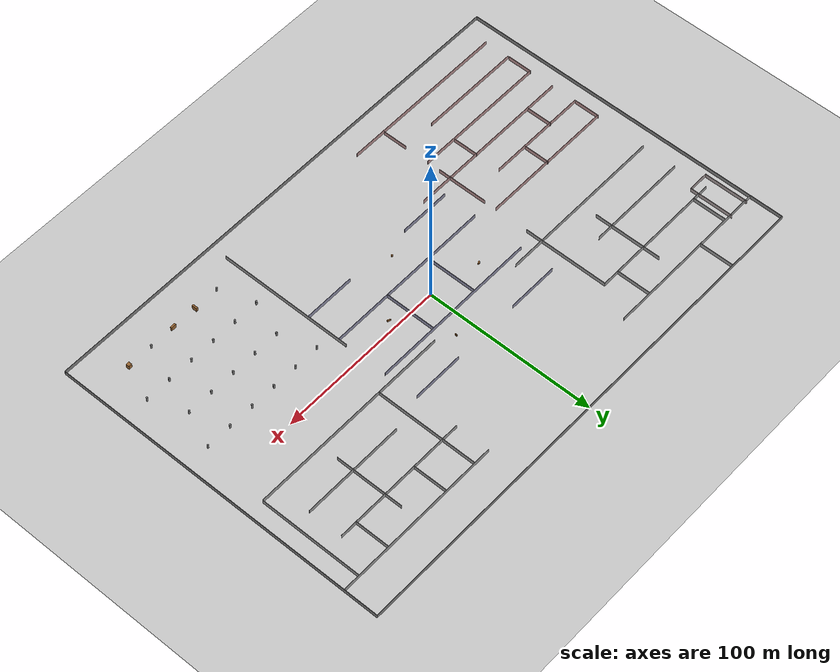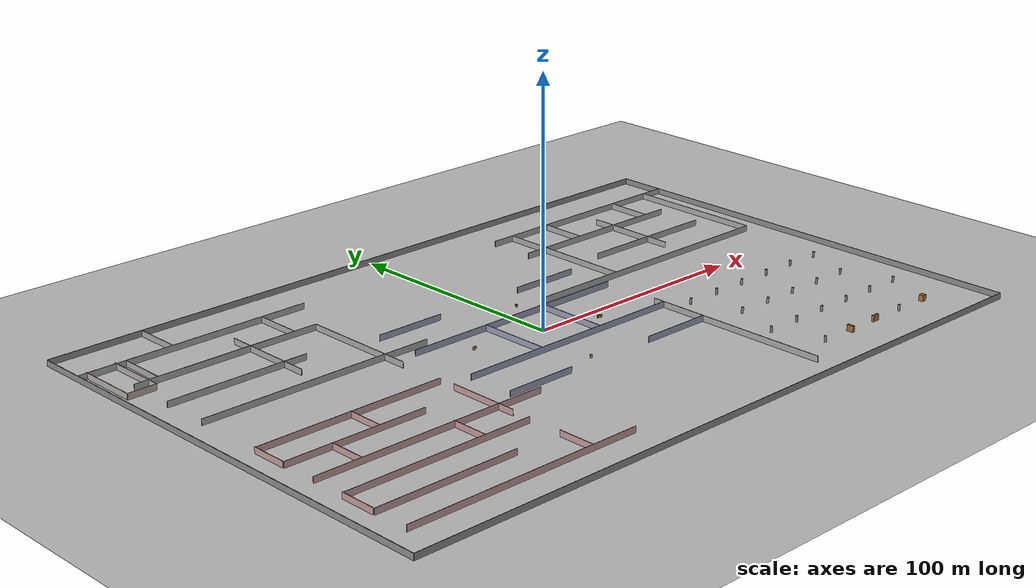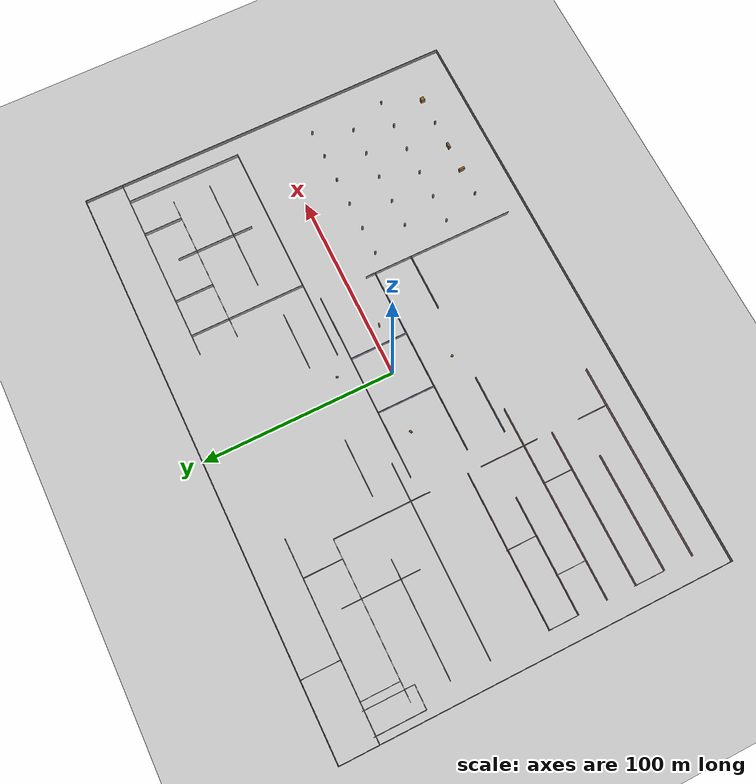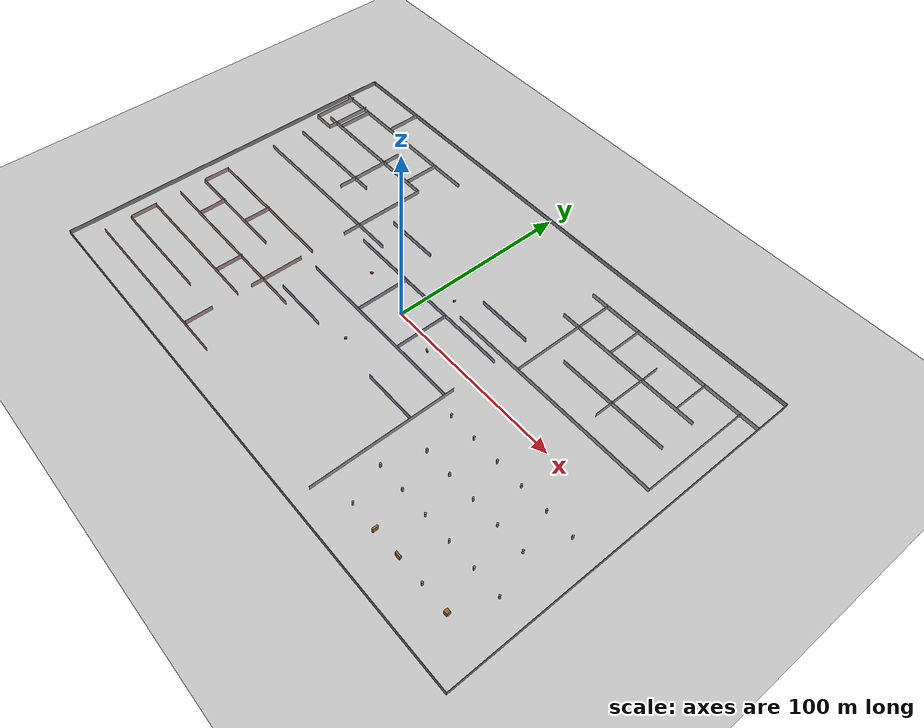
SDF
<?xml version="1.0"?>
<sdf version="1.6">
  <world name="factory_maze">

    <physics type="ode">
      <real_time_update_rate>1000.0</real_time_update_rate>
      <max_step_size>0.001</max_step_size>
      <real_time_factor>1</real_time_factor>
    </physics>

    <include>
      <uri>model://sun</uri>
    </include>

    <include>
      <uri>model://ground_plane</uri>
    </include>

    <!-- Wall height: 2.5m, thickness: 0.2m -->
    <!-- Robot: 0.6m x 0.6m, corridors: 1.5-2.0m wide -->

    <!-- OUTER WALLS (300m x 200m) -->

    <!-- North wall -->
    <model name="outer_north">
      <static>true</static>
      <pose>0 100 1.25 0 0 0</pose>
      <link name="link">
        <collision name="c"><geometry><box><size>300.2 0.2 2.5</size></box></geometry></collision>
        <visual name="v"><geometry><box><size>300.2 0.2 2.5</size></box></geometry>
          <material><ambient>0.5 0.5 0.5 1</ambient></material></visual>
      </link>
    </model>
    <!-- South wall -->
    <model name="outer_south">
      <static>true</static>
      <pose>0 -100 1.25 0 0 0</pose>
      <link name="link">
        <collision name="c"><geometry><box><size>300.2 0.2 2.5</size></box></geometry></collision>
        <visual name="v"><geometry><box><size>300.2 0.2 2.5</size></box></geometry>
          <material><ambient>0.5 0.5 0.5 1</ambient></material></visual>
      </link>
    </model>
    <!-- East wall -->
    <model name="outer_east">
      <static>true</static>
      <pose>150 0 1.25 0 0 0</pose>
      <link name="link">
        <collision name="c"><geometry><box><size>0.2 200.0 2.5</size></box></geometry></collision>
        <visual name="v"><geometry><box><size>0.2 200.0 2.5</size></box></geometry>
          <material><ambient>0.5 0.5 0.5 1</ambient></material></visual>
      </link>
    </model>
    <!-- West wall -->
    <model name="outer_west">
      <static>true</static>
      <pose>-150 0 1.25 0 0 0</pose>
      <link name="link">
        <collision name="c"><geometry><box><size>0.2 200.0 2.5</size></box></geometry></collision>
        <visual name="v"><geometry><box><size>0.2 200.0 2.5</size></box></geometry>
          <material><ambient>0.5 0.5 0.5 1</ambient></material></visual>
      </link>
    </model>

    <!-- ZONE A: Northwest — Dense maze corridors (-150 to -50, 0 to 100) -->

    <!-- Horizontal corridors (2m wide between walls) -->
    <model name="za_h1"><static>true</static>
      <pose>-100 80 1.25 0 0 0</pose>
      <link name="l"><collision name="c"><geometry><box><size>100 0.2 2.5</size></box></geometry></collision>
        <visual name="v"><geometry><box><size>100 0.2 2.5</size></box></geometry><material><ambient>0.6 0.6 0.6 1</ambient></material></visual></link>
    </model>
    <model name="za_h2"><static>true</static>
      <pose>-100 60 1.25 0 0 0</pose>
      <link name="l"><collision name="c"><geometry><box><size>80 0.2 2.5</size></box></geometry></collision>
        <visual name="v"><geometry><box><size>80 0.2 2.5</size></box></geometry><material><ambient>0.6 0.6 0.6 1</ambient></material></visual></link>
    </model>
    <model name="za_h3"><static>true</static>
      <pose>-110 40 1.25 0 0 0</pose>
      <link name="l"><collision name="c"><geometry><box><size>60 0.2 2.5</size></box></geometry></collision>
        <visual name="v"><geometry><box><size>60 0.2 2.5</size></box></geometry><material><ambient>0.6 0.6 0.6 1</ambient></material></visual></link>
    </model>
    <model name="za_h4"><static>true</static>
      <pose>-90 20 1.25 0 0 0</pose>
      <link name="l"><collision name="c"><geometry><box><size>100 0.2 2.5</size></box></geometry></collision>
        <visual name="v"><geometry><box><size>100 0.2 2.5</size></box></geometry><material><ambient>0.6 0.6 0.6 1</ambient></material></visual></link>
    </model>

    <!-- Vertical walls creating maze in zone A -->
    <model name="za_v1"><static>true</static>
      <pose>-130 70 1.25 0 0 0</pose>
      <link name="l"><collision name="c"><geometry><box><size>0.2 20 2.5</size></box></geometry></collision>
        <visual name="v"><geometry><box><size>0.2 20 2.5</size></box></geometry><material><ambient>0.6 0.6 0.6 1</ambient></material></visual></link>
    </model>
    <model name="za_v2"><static>true</static>
      <pose>-110 90 1.25 0 0 0</pose>
      <link name="l"><collision name="c"><geometry><box><size>0.2 20 2.5</size></box></geometry></collision>
        <visual name="v"><geometry><box><size>0.2 20 2.5</size></box></geometry><material><ambient>0.6 0.6 0.6 1</ambient></material></visual></link>
    </model>
    <model name="za_v3"><static>true</static>
      <pose>-90 50 1.25 0 0 0</pose>
      <link name="l"><collision name="c"><geometry><box><size>0.2 40 2.5</size></box></geometry></collision>
        <visual name="v"><geometry><box><size>0.2 40 2.5</size></box></geometry><material><ambient>0.6 0.6 0.6 1</ambient></material></visual></link>
    </model>
    <model name="za_v4"><static>true</static>
      <pose>-70 70 1.25 0 0 0</pose>
      <link name="l"><collision name="c"><geometry><box><size>0.2 20 2.5</size></box></geometry></collision>
        <visual name="v"><geometry><box><size>0.2 20 2.5</size></box></geometry><material><ambient>0.6 0.6 0.6 1</ambient></material></visual></link>
    </model>
    <model name="za_v5"><static>true</static>
      <pose>-60 35 1.25 0 0 0</pose>
      <link name="l"><collision name="c"><geometry><box><size>0.2 50 2.5</size></box></geometry></collision>
        <visual name="v"><geometry><box><size>0.2 50 2.5</size></box></geometry><material><ambient>0.6 0.6 0.6 1</ambient></material></visual></link>
    </model>

    <!-- Dead-end traps in zone A -->
    <model name="za_dead1"><static>true</static>
      <pose>-140 55 1.25 0 0 0</pose>
      <link name="l"><collision name="c"><geometry><box><size>12 0.2 2.5</size></box></geometry></collision>
        <visual name="v"><geometry><box><size>12 0.2 2.5</size></box></geometry><material><ambient>0.65 0.6 0.6 1</ambient></material></visual></link>
    </model>
    <model name="za_dead2"><static>true</static>
      <pose>-146 68 1.25 0 0 0</pose>
      <link name="l"><collision name="c"><geometry><box><size>0.2 26 2.5</size></box></geometry></collision>
        <visual name="v"><geometry><box><size>0.2 26 2.5</size></box></geometry><material><ambient>0.65 0.6 0.6 1</ambient></material></visual></link>
    </model>
    <model name="za_dead3"><static>true</static>
      <pose>-134 68 1.25 0 0 0</pose>
      <link name="l"><collision name="c"><geometry><box><size>0.2 26 2.5</size></box></geometry></collision>
        <visual name="v"><geometry><box><size>0.2 26 2.5</size></box></geometry><material><ambient>0.65 0.6 0.6 1</ambient></material></visual></link>
    </model>

    <!-- ZONE B: Northeast — Long corridors + rooms (50 to 150, 0 to 100) -->

    <!-- Long horizontal corridors -->
    <model name="zb_h1"><static>true</static>
      <pose>100 80 1.25 0 0 0</pose>
      <link name="l"><collision name="c"><geometry><box><size>100 0.2 2.5</size></box></geometry></collision>
        <visual name="v"><geometry><box><size>100 0.2 2.5</size></box></geometry><material><ambient>0.6 0.6 0.6 1</ambient></material></visual></link>
    </model>
    <model name="zb_h2"><static>true</static>
      <pose>90 60 1.25 0 0 0</pose>
      <link name="l"><collision name="c"><geometry><box><size>80 0.2 2.5</size></box></geometry></collision>
        <visual name="v"><geometry><box><size>80 0.2 2.5</size></box></geometry><material><ambient>0.6 0.6 0.6 1</ambient></material></visual></link>
    </model>
    <model name="zb_h3"><static>true</static>
      <pose>100 40 1.25 0 0 0</pose>
      <link name="l"><collision name="c"><geometry><box><size>60 0.2 2.5</size></box></geometry></collision>
        <visual name="v"><geometry><box><size>60 0.2 2.5</size></box></geometry><material><ambient>0.6 0.6 0.6 1</ambient></material></visual></link>
    </model>
    <model name="zb_h4"><static>true</static>
      <pose>80 20 1.25 0 0 0</pose>
      <link name="l"><collision name="c"><geometry><box><size>120 0.2 2.5</size></box></geometry></collision>
        <visual name="v"><geometry><box><size>120 0.2 2.5</size></box></geometry><material><ambient>0.6 0.6 0.6 1</ambient></material></visual></link>
    </model>

    <!-- Vertical walls for rooms -->
    <model name="zb_v1"><static>true</static>
      <pose>60 50 1.25 0 0 0</pose>
      <link name="l"><collision name="c"><geometry><box><size>0.2 60 2.5</size></box></geometry></collision>
        <visual name="v"><geometry><box><size>0.2 60 2.5</size></box></geometry><material><ambient>0.6 0.6 0.6 1</ambient></material></visual></link>
    </model>
    <model name="zb_v2"><static>true</static>
      <pose>80 70 1.25 0 0 0</pose>
      <link name="l"><collision name="c"><geometry><box><size>0.2 20 2.5</size></box></geometry></collision>
        <visual name="v"><geometry><box><size>0.2 20 2.5</size></box></geometry><material><ambient>0.6 0.6 0.6 1</ambient></material></visual></link>
    </model>
    <model name="zb_v3"><static>true</static>
      <pose>100 50 1.25 0 0 0</pose>
      <link name="l"><collision name="c"><geometry><box><size>0.2 40 2.5</size></box></geometry></collision>
        <visual name="v"><geometry><box><size>0.2 40 2.5</size></box></geometry><material><ambient>0.6 0.6 0.6 1</ambient></material></visual></link>
    </model>
    <model name="zb_v4"><static>true</static>
      <pose>120 70 1.25 0 0 0</pose>
      <link name="l"><collision name="c"><geometry><box><size>0.2 20 2.5</size></box></geometry></collision>
        <visual name="v"><geometry><box><size>0.2 20 2.5</size></box></geometry><material><ambient>0.6 0.6 0.6 1</ambient></material></visual></link>
    </model>
    <model name="zb_v5"><static>true</static>
      <pose>140 50 1.25 0 0 0</pose>
      <link name="l"><collision name="c"><geometry><box><size>0.2 60 2.5</size></box></geometry></collision>
        <visual name="v"><geometry><box><size>0.2 60 2.5</size></box></geometry><material><ambient>0.6 0.6 0.6 1</ambient></material></visual></link>
    </model>

    <!-- ZONE C: Southwest — Narrow passages (-150 to -50, -100 to 0) -->
    <!-- Corridors 1.2m wide (robot is 0.6m → only 0.3m clearance each side) -->

    <!-- Tight zigzag corridors -->
    <model name="zc_h1"><static>true</static>
      <pose>-100 -10 1.25 0 0 0</pose>
      <link name="l"><collision name="c"><geometry><box><size>80 0.2 2.5</size></box></geometry></collision>
        <visual name="v"><geometry><box><size>80 0.2 2.5</size></box></geometry><material><ambient>0.7 0.55 0.55 1</ambient></material></visual></link>
    </model>
    <model name="zc_h2"><static>true</static>
      <pose>-110 -25 1.25 0 0 0</pose>
      <link name="l"><collision name="c"><geometry><box><size>60 0.2 2.5</size></box></geometry></collision>
        <visual name="v"><geometry><box><size>60 0.2 2.5</size></box></geometry><material><ambient>0.7 0.55 0.55 1</ambient></material></visual></link>
    </model>
    <model name="zc_h3"><static>true</static>
      <pose>-90 -40 1.25 0 0 0</pose>
      <link name="l"><collision name="c"><geometry><box><size>100 0.2 2.5</size></box></geometry></collision>
        <visual name="v"><geometry><box><size>100 0.2 2.5</size></box></geometry><material><ambient>0.7 0.55 0.55 1</ambient></material></visual></link>
    </model>
    <model name="zc_h4"><static>true</static>
      <pose>-100 -55 1.25 0 0 0</pose>
      <link name="l"><collision name="c"><geometry><box><size>80 0.2 2.5</size></box></geometry></collision>
        <visual name="v"><geometry><box><size>80 0.2 2.5</size></box></geometry><material><ambient>0.7 0.55 0.55 1</ambient></material></visual></link>
    </model>
    <model name="zc_h5"><static>true</static>
      <pose>-110 -70 1.25 0 0 0</pose>
      <link name="l"><collision name="c"><geometry><box><size>60 0.2 2.5</size></box></geometry></collision>
        <visual name="v"><geometry><box><size>60 0.2 2.5</size></box></geometry><material><ambient>0.7 0.55 0.55 1</ambient></material></visual></link>
    </model>
    <model name="zc_h6"><static>true</static>
      <pose>-90 -85 1.25 0 0 0</pose>
      <link name="l"><collision name="c"><geometry><box><size>100 0.2 2.5</size></box></geometry></collision>
        <visual name="v"><geometry><box><size>100 0.2 2.5</size></box></geometry><material><ambient>0.7 0.55 0.55 1</ambient></material></visual></link>
    </model>

    <!-- Vertical zigzag connectors -->
    <model name="zc_v1"><static>true</static>
      <pose>-140 -17 1.25 0 0 0</pose>
      <link name="l"><collision name="c"><geometry><box><size>0.2 15 2.5</size></box></geometry></collision>
        <visual name="v"><geometry><box><size>0.2 15 2.5</size></box></geometry><material><ambient>0.7 0.55 0.55 1</ambient></material></visual></link>
    </model>
    <model name="zc_v2"><static>true</static>
      <pose>-120 -32 1.25 0 0 0</pose>
      <link name="l"><collision name="c"><geometry><box><size>0.2 15 2.5</size></box></geometry></collision>
        <visual name="v"><geometry><box><size>0.2 15 2.5</size></box></geometry><material><ambient>0.7 0.55 0.55 1</ambient></material></visual></link>
    </model>
    <model name="zc_v3"><static>true</static>
      <pose>-100 -17 1.25 0 0 0</pose>
      <link name="l"><collision name="c"><geometry><box><size>0.2 15 2.5</size></box></geometry></collision>
        <visual name="v"><geometry><box><size>0.2 15 2.5</size></box></geometry><material><ambient>0.7 0.55 0.55 1</ambient></material></visual></link>
    </model>
    <model name="zc_v4"><static>true</static>
      <pose>-80 -47 1.25 0 0 0</pose>
      <link name="l"><collision name="c"><geometry><box><size>0.2 15 2.5</size></box></geometry></collision>
        <visual name="v"><geometry><box><size>0.2 15 2.5</size></box></geometry><material><ambient>0.7 0.55 0.55 1</ambient></material></visual></link>
    </model>
    <model name="zc_v5"><static>true</static>
      <pose>-60 -32 1.25 0 0 0</pose>
      <link name="l"><collision name="c"><geometry><box><size>0.2 30 2.5</size></box></geometry></collision>
        <visual name="v"><geometry><box><size>0.2 30 2.5</size></box></geometry><material><ambient>0.7 0.55 0.55 1</ambient></material></visual></link>
    </model>
    <model name="zc_v6"><static>true</static>
      <pose>-140 -62 1.25 0 0 0</pose>
      <link name="l"><collision name="c"><geometry><box><size>0.2 15 2.5</size></box></geometry></collision>
        <visual name="v"><geometry><box><size>0.2 15 2.5</size></box></geometry><material><ambient>0.7 0.55 0.55 1</ambient></material></visual></link>
    </model>
    <model name="zc_v7"><static>true</static>
      <pose>-60 -77 1.25 0 0 0</pose>
      <link name="l"><collision name="c"><geometry><box><size>0.2 15 2.5</size></box></geometry></collision>
        <visual name="v"><geometry><box><size>0.2 15 2.5</size></box></geometry><material><ambient>0.7 0.55 0.55 1</ambient></material></visual></link>
    </model>

    <!-- ZONE D: Southeast — Open area with pillars (50 to 150, -100 to 0) -->

    <!-- Grid of pillars (forces path planning around many small obstacles) -->
    <model name="zd_p01"><static>true</static><pose>60 -20 1.25 0 0 0</pose>
      <link name="l"><collision name="c"><geometry><cylinder><radius>0.5</radius><length>2.5</length></cylinder></geometry></collision>
        <visual name="v"><geometry><cylinder><radius>0.5</radius><length>2.5</length></cylinder></geometry><material><ambient>0.5 0.5 0.5 1</ambient></material></visual></link></model>
    <model name="zd_p02"><static>true</static><pose>75 -20 1.25 0 0 0</pose>
      <link name="l"><collision name="c"><geometry><cylinder><radius>0.5</radius><length>2.5</length></cylinder></geometry></collision>
        <visual name="v"><geometry><cylinder><radius>0.5</radius><length>2.5</length></cylinder></geometry><material><ambient>0.5 0.5 0.5 1</ambient></material></visual></link></model>
    <model name="zd_p03"><static>true</static><pose>90 -20 1.25 0 0 0</pose>
      <link name="l"><collision name="c"><geometry><cylinder><radius>0.5</radius><length>2.5</length></cylinder></geometry></collision>
        <visual name="v"><geometry><cylinder><radius>0.5</radius><length>2.5</length></cylinder></geometry><material><ambient>0.5 0.5 0.5 1</ambient></material></visual></link></model>
    <model name="zd_p04"><static>true</static><pose>105 -20 1.25 0 0 0</pose>
      <link name="l"><collision name="c"><geometry><cylinder><radius>0.5</radius><length>2.5</length></cylinder></geometry></collision>
        <visual name="v"><geometry><cylinder><radius>0.5</radius><length>2.5</length></cylinder></geometry><material><ambient>0.5 0.5 0.5 1</ambient></material></visual></link></model>
    <model name="zd_p05"><static>true</static><pose>120 -20 1.25 0 0 0</pose>
      <link name="l"><collision name="c"><geometry><cylinder><radius>0.5</radius><length>2.5</length></cylinder></geometry></collision>
        <visual name="v"><geometry><cylinder><radius>0.5</radius><length>2.5</length></cylinder></geometry><material><ambient>0.5 0.5 0.5 1</ambient></material></visual></link></model>
    <model name="zd_p06"><static>true</static><pose>135 -20 1.25 0 0 0</pose>
      <link name="l"><collision name="c"><geometry><cylinder><radius>0.5</radius><length>2.5</length></cylinder></geometry></collision>
        <visual name="v"><geometry><cylinder><radius>0.5</radius><length>2.5</length></cylinder></geometry><material><ambient>0.5 0.5 0.5 1</ambient></material></visual></link></model>

    <model name="zd_p07"><static>true</static><pose>67 -40 1.25 0 0 0</pose>
      <link name="l"><collision name="c"><geometry><cylinder><radius>0.5</radius><length>2.5</length></cylinder></geometry></collision>
        <visual name="v"><geometry><cylinder><radius>0.5</radius><length>2.5</length></cylinder></geometry><material><ambient>0.5 0.5 0.5 1</ambient></material></visual></link></model>
    <model name="zd_p08"><static>true</static><pose>82 -40 1.25 0 0 0</pose>
      <link name="l"><collision name="c"><geometry><cylinder><radius>0.5</radius><length>2.5</length></cylinder></geometry></collision>
        <visual name="v"><geometry><cylinder><radius>0.5</radius><length>2.5</length></cylinder></geometry><material><ambient>0.5 0.5 0.5 1</ambient></material></visual></link></model>
    <model name="zd_p09"><static>true</static><pose>97 -40 1.25 0 0 0</pose>
      <link name="l"><collision name="c"><geometry><cylinder><radius>0.5</radius><length>2.5</length></cylinder></geometry></collision>
        <visual name="v"><geometry><cylinder><radius>0.5</radius><length>2.5</length></cylinder></geometry><material><ambient>0.5 0.5 0.5 1</ambient></material></visual></link></model>
    <model name="zd_p10"><static>true</static><pose>112 -40 1.25 0 0 0</pose>
      <link name="l"><collision name="c"><geometry><cylinder><radius>0.5</radius><length>2.5</length></cylinder></geometry></collision>
        <visual name="v"><geometry><cylinder><radius>0.5</radius><length>2.5</length></cylinder></geometry><material><ambient>0.5 0.5 0.5 1</ambient></material></visual></link></model>
    <model name="zd_p11"><static>true</static><pose>127 -40 1.25 0 0 0</pose>
      <link name="l"><collision name="c"><geometry><cylinder><radius>0.5</radius><length>2.5</length></cylinder></geometry></collision>
        <visual name="v"><geometry><cylinder><radius>0.5</radius><length>2.5</length></cylinder></geometry><material><ambient>0.5 0.5 0.5 1</ambient></material></visual></link></model>

    <model name="zd_p12"><static>true</static><pose>60 -60 1.25 0 0 0</pose>
      <link name="l"><collision name="c"><geometry><cylinder><radius>0.5</radius><length>2.5</length></cylinder></geometry></collision>
        <visual name="v"><geometry><cylinder><radius>0.5</radius><length>2.5</length></cylinder></geometry><material><ambient>0.5 0.5 0.5 1</ambient></material></visual></link></model>
    <model name="zd_p13"><static>true</static><pose>75 -60 1.25 0 0 0</pose>
      <link name="l"><collision name="c"><geometry><cylinder><radius>0.5</radius><length>2.5</length></cylinder></geometry></collision>
        <visual name="v"><geometry><cylinder><radius>0.5</radius><length>2.5</length></cylinder></geometry><material><ambient>0.5 0.5 0.5 1</ambient></material></visual></link></model>
    <model name="zd_p14"><static>true</static><pose>90 -60 1.25 0 0 0</pose>
      <link name="l"><collision name="c"><geometry><cylinder><radius>0.5</radius><length>2.5</length></cylinder></geometry></collision>
        <visual name="v"><geometry><cylinder><radius>0.5</radius><length>2.5</length></cylinder></geometry><material><ambient>0.5 0.5 0.5 1</ambient></material></visual></link></model>
    <model name="zd_p15"><static>true</static><pose>105 -60 1.25 0 0 0</pose>
      <link name="l"><collision name="c"><geometry><cylinder><radius>0.5</radius><length>2.5</length></cylinder></geometry></collision>
        <visual name="v"><geometry><cylinder><radius>0.5</radius><length>2.5</length></cylinder></geometry><material><ambient>0.5 0.5 0.5 1</ambient></material></visual></link></model>
    <model name="zd_p16"><static>true</static><pose>120 -60 1.25 0 0 0</pose>
      <link name="l"><collision name="c"><geometry><cylinder><radius>0.5</radius><length>2.5</length></cylinder></geometry></collision>
        <visual name="v"><geometry><cylinder><radius>0.5</radius><length>2.5</length></cylinder></geometry><material><ambient>0.5 0.5 0.5 1</ambient></material></visual></link></model>
    <model name="zd_p17"><static>true</static><pose>135 -60 1.25 0 0 0</pose>
      <link name="l"><collision name="c"><geometry><cylinder><radius>0.5</radius><length>2.5</length></cylinder></geometry></collision>
        <visual name="v"><geometry><cylinder><radius>0.5</radius><length>2.5</length></cylinder></geometry><material><ambient>0.5 0.5 0.5 1</ambient></material></visual></link></model>

    <model name="zd_p18"><static>true</static><pose>67 -80 1.25 0 0 0</pose>
      <link name="l"><collision name="c"><geometry><cylinder><radius>0.5</radius><length>2.5</length></cylinder></geometry></collision>
        <visual name="v"><geometry><cylinder><radius>0.5</radius><length>2.5</length></cylinder></geometry><material><ambient>0.5 0.5 0.5 1</ambient></material></visual></link></model>
    <model name="zd_p19"><static>true</static><pose>82 -80 1.25 0 0 0</pose>
      <link name="l"><collision name="c"><geometry><box><size>1.0 3.0 2.5</size></box></geometry></collision>
        <visual name="v"><geometry><box><size>1.0 3.0 2.5</size></box></geometry><material><ambient>0.6 0.4 0.2 1</ambient></material></visual></link></model>
    <model name="zd_p20"><static>true</static><pose>97 -80 1.25 0 0 0</pose>
      <link name="l"><collision name="c"><geometry><box><size>3.0 1.0 2.5</size></box></geometry></collision>
        <visual name="v"><geometry><box><size>3.0 1.0 2.5</size></box></geometry><material><ambient>0.6 0.4 0.2 1</ambient></material></visual></link></model>
    <model name="zd_p21"><static>true</static><pose>112 -80 1.25 0 0 0</pose>
      <link name="l"><collision name="c"><geometry><cylinder><radius>0.5</radius><length>2.5</length></cylinder></geometry></collision>
        <visual name="v"><geometry><cylinder><radius>0.5</radius><length>2.5</length></cylinder></geometry><material><ambient>0.5 0.5 0.5 1</ambient></material></visual></link></model>
    <model name="zd_p22"><static>true</static><pose>127 -80 1.25 0 0 0</pose>
      <link name="l"><collision name="c"><geometry><box><size>2.0 2.0 2.5</size></box></geometry></collision>
        <visual name="v"><geometry><box><size>2.0 2.0 2.5</size></box></geometry><material><ambient>0.6 0.4 0.2 1</ambient></material></visual></link></model>

    <!-- Walls separating zone D from other areas -->
    <model name="zd_wall_w"><static>true</static>
      <pose>50 -50 1.25 0 0 0</pose>
      <link name="l"><collision name="c"><geometry><box><size>0.2 80 2.5</size></box></geometry></collision>
        <visual name="v"><geometry><box><size>0.2 80 2.5</size></box></geometry><material><ambient>0.6 0.6 0.6 1</ambient></material></visual></link>
    </model>

    <!-- ZONE E: Center — Cross intersection + connecting corridors -->
    <!-- Connects all four zones (-50 to 50, -50 to 50) -->

    <!-- Central cross structure -->
    <model name="ze_h1"><static>true</static>
      <pose>0 15 1.25 0 0 0</pose>
      <link name="l"><collision name="c"><geometry><box><size>100 0.2 2.5</size></box></geometry></collision>
        <visual name="v"><geometry><box><size>100 0.2 2.5</size></box></geometry><material><ambient>0.55 0.55 0.65 1</ambient></material></visual></link>
    </model>
    <model name="ze_h2"><static>true</static>
      <pose>0 -15 1.25 0 0 0</pose>
      <link name="l"><collision name="c"><geometry><box><size>100 0.2 2.5</size></box></geometry></collision>
        <visual name="v"><geometry><box><size>100 0.2 2.5</size></box></geometry><material><ambient>0.55 0.55 0.65 1</ambient></material></visual></link>
    </model>
    <model name="ze_v1"><static>true</static>
      <pose>-15 0 1.25 0 0 0</pose>
      <link name="l"><collision name="c"><geometry><box><size>0.2 30 2.5</size></box></geometry></collision>
        <visual name="v"><geometry><box><size>0.2 30 2.5</size></box></geometry><material><ambient>0.55 0.55 0.65 1</ambient></material></visual></link>
    </model>
    <model name="ze_v2"><static>true</static>
      <pose>15 0 1.25 0 0 0</pose>
      <link name="l"><collision name="c"><geometry><box><size>0.2 30 2.5</size></box></geometry></collision>
        <visual name="v"><geometry><box><size>0.2 30 2.5</size></box></geometry><material><ambient>0.55 0.55 0.65 1</ambient></material></visual></link>
    </model>

    <!-- Inner walls creating rooms around center -->
    <model name="ze_room1"><static>true</static>
      <pose>-35 35 1.25 0 0 0</pose>
      <link name="l"><collision name="c"><geometry><box><size>30 0.2 2.5</size></box></geometry></collision>
        <visual name="v"><geometry><box><size>30 0.2 2.5</size></box></geometry><material><ambient>0.55 0.55 0.65 1</ambient></material></visual></link>
    </model>
    <model name="ze_room2"><static>true</static>
      <pose>35 35 1.25 0 0 0</pose>
      <link name="l"><collision name="c"><geometry><box><size>30 0.2 2.5</size></box></geometry></collision>
        <visual name="v"><geometry><box><size>30 0.2 2.5</size></box></geometry><material><ambient>0.55 0.55 0.65 1</ambient></material></visual></link>
    </model>
    <model name="ze_room3"><static>true</static>
      <pose>-35 -35 1.25 0 0 0</pose>
      <link name="l"><collision name="c"><geometry><box><size>30 0.2 2.5</size></box></geometry></collision>
        <visual name="v"><geometry><box><size>30 0.2 2.5</size></box></geometry><material><ambient>0.55 0.55 0.65 1</ambient></material></visual></link>
    </model>
    <model name="ze_room4"><static>true</static>
      <pose>35 -35 1.25 0 0 0</pose>
      <link name="l"><collision name="c"><geometry><box><size>30 0.2 2.5</size></box></geometry></collision>
        <visual name="v"><geometry><box><size>30 0.2 2.5</size></box></geometry><material><ambient>0.55 0.55 0.65 1</ambient></material></visual></link>
    </model>

    <!-- Random obstacles in central area -->
    <model name="ze_obs1"><static>true</static><pose>-30 5 0.5 0 0 0.4</pose>
      <link name="l"><collision name="c"><geometry><box><size>1.5 0.8 1.0</size></box></geometry></collision>
        <visual name="v"><geometry><box><size>1.5 0.8 1.0</size></box></geometry><material><ambient>0.6 0.4 0.2 1</ambient></material></visual></link></model>
    <model name="ze_obs2"><static>true</static><pose>25 -5 0.5 0 0 -0.3</pose>
      <link name="l"><collision name="c"><geometry><box><size>2.0 0.6 1.0</size></box></geometry></collision>
        <visual name="v"><geometry><box><size>2.0 0.6 1.0</size></box></geometry><material><ambient>0.6 0.4 0.2 1</ambient></material></visual></link></model>
    <model name="ze_obs3"><static>true</static><pose>-5 -30 0.5 0 0 0.8</pose>
      <link name="l"><collision name="c"><geometry><box><size>1.0 1.0 1.0</size></box></geometry></collision>
        <visual name="v"><geometry><box><size>1.0 1.0 1.0</size></box></geometry><material><ambient>0.6 0.4 0.2 1</ambient></material></visual></link></model>
    <model name="ze_obs4"><static>true</static><pose>10 25 0.5 0 0 1.2</pose>
      <link name="l"><collision name="c"><geometry><box><size>1.2 0.5 1.0</size></box></geometry></collision>
        <visual name="v"><geometry><box><size>1.2 0.5 1.0</size></box></geometry><material><ambient>0.6 0.4 0.2 1</ambient></material></visual></link></model>

  </world>
</sdf>
